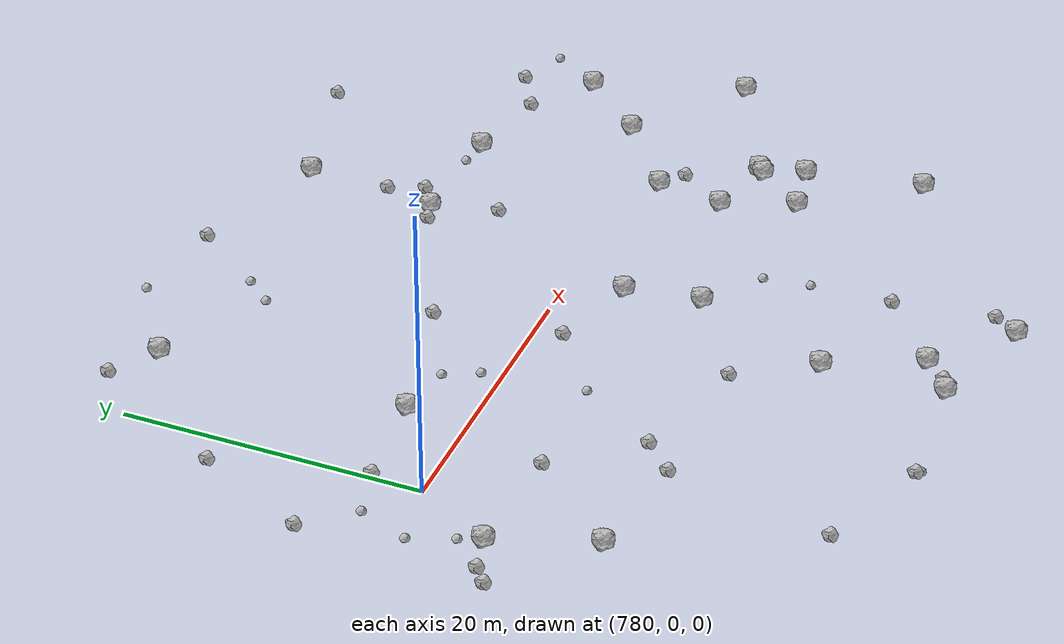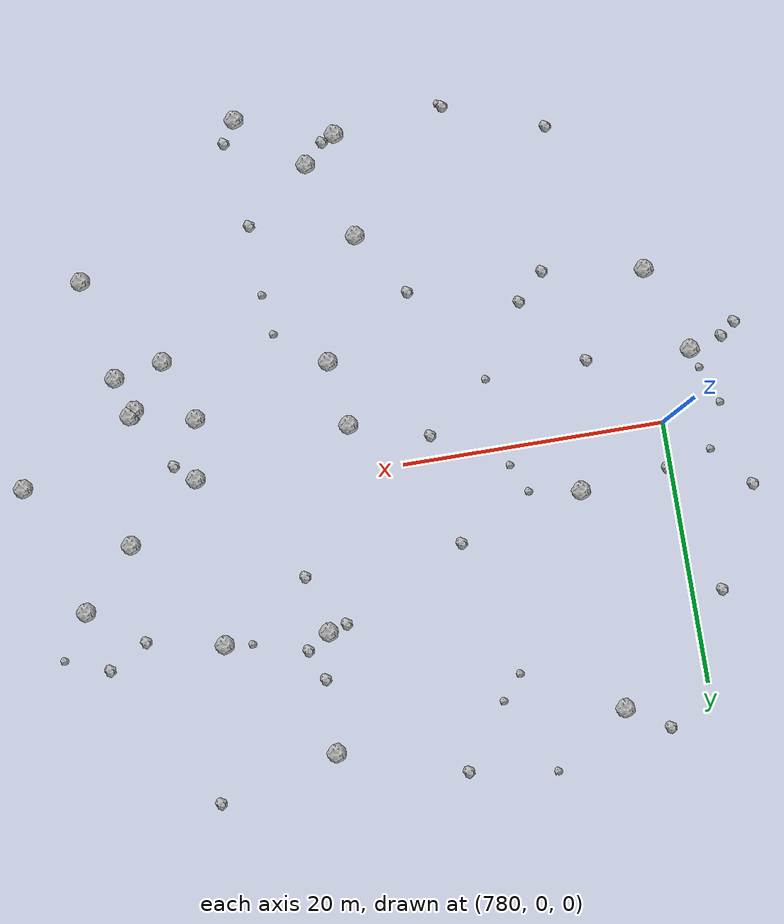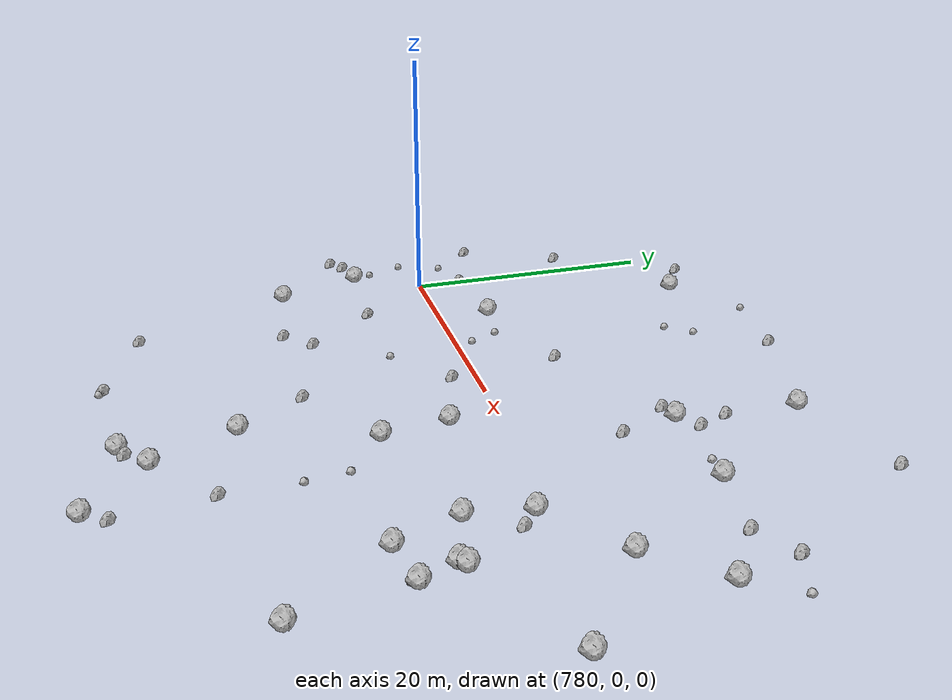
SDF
<sdf version="1.6">
 <world name="default">
  <include><uri>model://sun</uri></include>
  <model name="rock1_20_4">
   <include><uri>model://rock1</uri><pose>787.0558920830945 4.099100345257028 0.5 0 0 0</pose></include>
  </model>
  <model name="rock1_20_5">
   <include><uri>model://rock1</uri><pose>822.1132666626236 -17.822461111404657 0.5 0 0 0</pose></include>
  </model>
  <model name="rock1_20_6">
   <include><uri>model://rock1</uri><pose>816.911065690585 -10.745512658140182 0.5 0 0 0</pose></include>
  </model>
  <model name="rock1_20_7">
   <include><uri>model://rock1</uri><pose>803.6854925902138 -23.991139415009734 0.5 0 0 0</pose></include>
  </model>
  <model name="rock1_20_8">
   <include><uri>model://rock1</uri><pose>807.660943007395 11.582659393602647 0.5 0 0 0</pose></include>
  </model>
  <model name="rock1_20_9">
   <include><uri>model://rock1</uri><pose>777.0624810294797 -5.232164540278532 0.5 0 0 0</pose></include>
  </model>
  <model name="rock1_20_10">
   <include><uri>model://rock1</uri><pose>786.512726806785 20.836516165933176 0.5 0 0 0</pose></include>
  </model>
  <model name="rock1_20_11">
   <include><uri>model://rock1</uri><pose>779.4687178187202 -11.864905493997675 0.5 0 0 0</pose></include>
  </model>
  <model name="rock1_20_12">
   <include><uri>model://rock1</uri><pose>815.5665690825551 11.26751110405985 0.5 0 0 0</pose></include>
  </model>
  <model name="rock1_20_13">
   <include><uri>model://rock1</uri><pose>815.7686456974169 -1.4721158440339437 0.5 0 0 0</pose></include>
  </model>
  <model name="rock1_20_14">
   <include><uri>model://rock1</uri><pose>808.5618563375504 -28.287961197993333 0.5 0 0 0</pose></include>
  </model>
  <model name="rock1_20_15">
   <include><uri>model://rock1</uri><pose>804.4321220117336 -8.716218757989974 0.5 0 0 0</pose></include>
  </model>
  <model name="rock1_20_16">
   <include><uri>model://rock1</uri><pose>815.0764920976094 -6.009219157462574 0.5 0 0 0</pose></include>
  </model>
  <model name="rock1_20_17">
   <include><uri>model://rock1</uri><pose>820.670893001564 -10.06522158788653 0.5 0 0 0</pose></include>
  </model>
  <model name="rock1_20_18">
   <include><uri>model://rock1</uri><pose>825.530715668987 7.155036979556009 0.5 0 0 0</pose></include>
  </model>
  <model name="rock1_20_19">
   <include><uri>model://rock1</uri><pose>821.3991254126706 2.6982708043250767 0.5 0 0 0</pose></include>
  </model>
  <model name="rock1_20_20">
   <include><uri>model://rock1</uri><pose>801.1622229835542 -25.968021617352477 0.5 0 0 0</pose></include>
  </model>
  <model name="rock1_20_21">
   <include><uri>model://rock1</uri><pose>819.5749542061868 -7.418490691532217 0.5 0 0 0</pose></include>
  </model>
  <model name="rock1_20_22">
   <include><uri>model://rock1</uri><pose>800.8377174263196 -17.950825449632177 0.5 0 0 0</pose></include>
  </model>
  <model name="rock1_20_23">
   <include><uri>model://rock1</uri><pose>803.6711958729883 -3.688404250897925 0.5 0 0 0</pose></include>
  </model>
  <model name="rock1_20_24">
   <include><uri>model://rock1</uri><pose>808.5324953231345 20.64218706314565 0.5 0 0 0</pose></include>
  </model>
  <model name="rock1_20_25">
   <include><uri>model://rock1</uri><pose>828.8136647842435 -2.861663497887875 0.5 0 0 0</pose></include>
  </model>
  <model name="rock1_20_26">
   <include><uri>model://rock1</uri><pose>819.9872919932424 -7.043255446284476 0.5 0 0 0</pose></include>
  </model>
  <model name="rock2_20_0">
   <include><uri>model://rock2</uri><pose>817.6873323982841 22.98632483557541 0.3 0 0 0</pose></include>
  </model>
  <model name="rock2_20_1">
   <include><uri>model://rock2</uri><pose>787.1801493232988 -12.93745194244529 0.3 0 0 0</pose></include>
  </model>
  <model name="rock2_20_2">
   <include><uri>model://rock2</uri><pose>802.1779432810415 -25.50646559908185 0.3 0 0 0</pose></include>
  </model>
  <model name="rock2_20_3">
   <include><uri>model://rock2</uri><pose>797.6437138013541 -1.8756484943905392 0.3 0 0 0</pose></include>
  </model>
  <model name="rock2_20_4">
   <include><uri>model://rock2</uri><pose>785.053590062034 -23.969045375881816 0.3 0 0 0</pose></include>
  </model>
  <model name="rock2_20_5">
   <include><uri>model://rock2</uri><pose>783.3235449759119 22.828835332852478 0.3 0 0 0</pose></include>
  </model>
  <model name="rock2_20_6">
   <include><uri>model://rock2</uri><pose>780.2648854328398 3.4684711419588723 0.3 0 0 0</pose></include>
  </model>
  <model name="rock2_20_7">
   <include><uri>model://rock2</uri><pose>774.0457671210672 5.685614379697384 0.3 0 0 0</pose></include>
  </model>
  <model name="rock2_20_8">
   <include><uri>model://rock2</uri><pose>819.6903536152016 -6.8453838791584545 0.3 0 0 0</pose></include>
  </model>
  <model name="rock2_20_9">
   <include><uri>model://rock2</uri><pose>798.9041990074925 23.662955744691537 0.3 0 0 0</pose></include>
  </model>
  <model name="rock2_20_10">
   <include><uri>model://rock2</uri><pose>824.3979213919383 11.795102541016021 0.3 0 0 0</pose></include>
  </model>
  <model name="rock2_20_11">
   <include><uri>model://rock2</uri><pose>774.497660193747 -5.851438844336013 0.3 0 0 0</pose></include>
  </model>
  <model name="rock2_20_12">
   <include><uri>model://rock2</uri><pose>773.3410457960954 -6.766336876640217 0.3 0 0 0</pose></include>
  </model>
  <model name="rock2_20_13">
   <include><uri>model://rock2</uri><pose>797.5960027952381 -13.017352508358055 0.3 0 0 0</pose></include>
  </model>
  <model name="rock2_20_14">
   <include><uri>model://rock2</uri><pose>808.7371684276936 7.201144622701541 0.3 0 0 0</pose></include>
  </model>
  <model name="rock2_20_15">
   <include><uri>model://rock2</uri><pose>792.6300331186222 -26.780664485310965 0.3 0 0 0</pose></include>
  </model>
  <model name="rock2_20_16">
   <include><uri>model://rock2</uri><pose>809.3711092221587 12.736841433793188 0.3 0 0 0</pose></include>
  </model>
  <model name="rock2_20_17">
   <include><uri>model://rock2</uri><pose>789.2861198908943 -10.896743241268155 0.3 0 0 0</pose></include>
  </model>
  <model name="rock2_20_18">
   <include><uri>model://rock2</uri><pose>817.2709804802638 -2.7174968935341006 0.3 0 0 0</pose></include>
  </model>
  <model name="rock2_20_19">
   <include><uri>model://rock2</uri><pose>784.9674106288526 -5.648951487515994 0.3 0 0 0</pose></include>
  </model>
  <model name="rock2_20_20">
   <include><uri>model://rock2</uri><pose>808.7121587457598 -20.00418183837233 0.3 0 0 0</pose></include>
  </model>
  <model name="rock2_20_21">
   <include><uri>model://rock2</uri><pose>809.6277252427927 -26.612583671135944 0.3 0 0 0</pose></include>
  </model>
  <model name="rock2_20_22">
   <include><uri>model://rock2</uri><pose>808.4358801090603 15.07183738004084 0.3 0 0 0</pose></include>
  </model>
  <model name="rock2_20_23">
   <include><uri>model://rock2</uri><pose>806.214663885326 11.205360546571804 0.3 0 0 0</pose></include>
  </model>
  <model name="rock2_20_24">
   <include><uri>model://rock2</uri><pose>777.7198932638964 13.223500115343434 0.3 0 0 0</pose></include>
  </model>
  <model name="rock2_20_25">
   <include><uri>model://rock2</uri><pose>796.6314499168857 6.590607376104089 0.3 0 0 0</pose></include>
  </model>
  <model name="rock2_20_26">
   <include><uri>model://rock2</uri><pose>821.3953494967523 10.125799901649287 0.3 0 0 0</pose></include>
  </model>
  <model name="rock3_20_0">
   <include><uri>model://rock3</uri><pose>776.7500855152471 2.511439237155514 0.2 0 0 0</pose></include>
  </model>
  <model name="rock3_20_1">
   <include><uri>model://rock3</uri><pose>792.2355663720249 24.67300037292427 0.2 0 0 0</pose></include>
  </model>
  <model name="rock3_20_2">
   <include><uri>model://rock3</uri><pose>775.4127050551655 -0.9018411317120609 0.2 0 0 0</pose></include>
  </model>
  <model name="rock3_20_3">
   <include><uri>model://rock3</uri><pose>790.9344510402454 3.4978456467014 0.2 0 0 0</pose></include>
  </model>
  <model name="rock3_20_4">
   <include><uri>model://rock3</uri><pose>820.4628306960958 -10.433279878302844 0.2 0 0 0</pose></include>
  </model>
  <model name="rock3_20_5">
   <include><uri>model://rock3</uri><pose>792.8911170540455 -27.09077925544707 0.2 0 0 0</pose></include>
  </model>
  <model name="rock3_20_6">
   <include><uri>model://rock3</uri><pose>793.8596739269088 16.98918353355844 0.2 0 0 0</pose></include>
  </model>
  <model name="rock3_20_7">
   <include><uri>model://rock3</uri><pose>792.7637219600065 -5.490897225296013 0.2 0 0 0</pose></include>
  </model>
  <model name="rock3_20_8">
   <include><uri>model://rock3</uri><pose>813.4551616258848 11.521809945402453 0.2 0 0 0</pose></include>
  </model>
  <model name="rock3_20_9">
   <include><uri>model://rock3</uri><pose>795.4189298274177 18.821090897640964 0.2 0 0 0</pose></include>
  </model>
  <model name="rock3_20_10">
   <include><uri>model://rock3</uri><pose>792.0057130366166 1.284828626100186 0.2 0 0 0</pose></include>
  </model>
  <model name="rock3_20_11">
   <include><uri>model://rock3</uri><pose>808.5563744234239 -14.620556160025188 0.2 0 0 0</pose></include>
  </model>
  <model name="rock3_20_12">
   <include><uri>model://rock3</uri><pose>808.1697003886981 -11.515779079675124 0.2 0 0 0</pose></include>
  </model>
  <model name="rock3_20_13">
   <include><uri>model://rock3</uri><pose>827.6860974859462 10.495812069713544 0.2 0 0 0</pose></include>
  </model>
  <model name="rock3_20_14">
   <include><uri>model://rock3</uri><pose>776.518443180266 -3.7712589190508226 0.2 0 0 0</pose></include>
  </model>
 </world>
</sdf>
